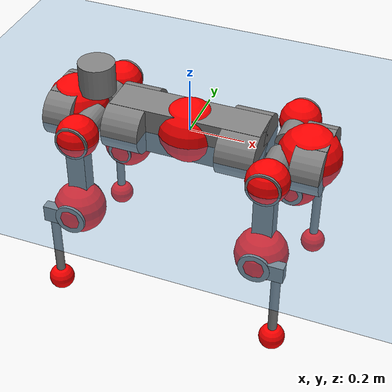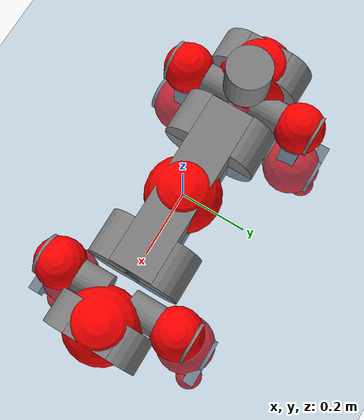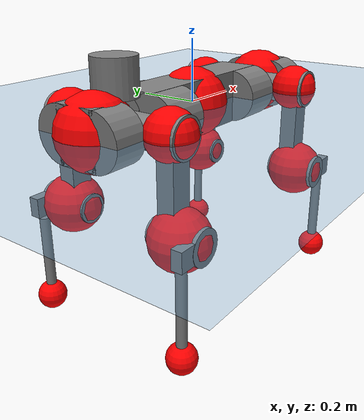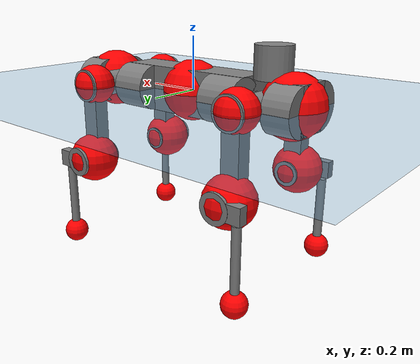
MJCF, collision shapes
<mujoco model="anymal_c">
  <compiler angle="radian" assetdir="assets" balanceinertia="true" inertiafromgeom="false"/>

  <option timestep="0.005" density="1.2" viscosity="2e-05"/>

  <size nkey="1"/>

  <visual>
    <quality shadowsize="8192"/>
    <map shadowclip="0.5"/>
  </visual>

  <default>
    <default class="/">
      <material specular="0" shininess="0.25"/>
      <geom contype="0" conaffinity="0" group="1" solref="-1000 -80"/>
      <site size="0.01 0.005 0.005" group="5"/>
      <general forcelimited="true" forcerange="-80 80" biastype="affine" gainprm="80" biasprm="0 -80 -2"/>
      <default class="anymal_c">
        <joint armature="0.01" damping="0.01" frictionloss="0.1"/>
        <default class="visual">
          <geom type="mesh" group="2"/>
          <default class="visual_zflip"/>
        </default>
        <default class="collision">
          <geom type="cylinder" group="3"/>
          <default class="foot">
            <geom size="0.03 0 0" type="sphere" condim="6" priority="1" friction="0.8 0.02 0.01" solimp="0.015 1 0.03"/>
          </default>
        </default>
      </default>
      <default class="reward_collision_sphere">
        <geom group="5" rgba="1 0 0 1"/>
      </default>
    </default>
  </default>

  <asset>
    <texture type="skybox" colorspace="auto" name="//unnamed_texture_0" builtin="gradient" rgb1="0.95 0.95 0.95" rgb2="0.95 0.95 0.95" width="100" height="600"/>
    <texture type="2d" colorspace="auto" name="texplane" builtin="checker" rgb1="0.345 0.575 0.748" rgb2="0.345 0.575 0.748" markrgb="1 1 1" width="512" height="512"/>
    <texture type="2d" colorspace="linear" name="base" file="base.png"/>
    <texture type="2d" colorspace="linear" name="top_shell" file="top_shell.png"/>
    <texture type="2d" colorspace="linear" name="bottom_shell" file="bottom_shell.png"/>
    <texture type="2d" colorspace="linear" name="remote" file="remote.png"/>
    <texture type="2d" colorspace="linear" name="hatch" file="hatch.png"/>
    <texture type="2d" colorspace="linear" name="handle" file="handle.png"/>
    <texture type="2d" colorspace="linear" name="face" file="face.png"/>
    <texture type="2d" colorspace="linear" name="battery" file="battery.png"/>
    <texture type="2d" colorspace="linear" name="lidar_cage" file="lidar_cage.png"/>
    <texture type="2d" colorspace="linear" name="depth_camera" file="depth_camera.png"/>
    <texture type="2d" colorspace="linear" name="wide_angle_camera" file="wide_angle_camera.png"/>
    <texture type="2d" colorspace="linear" name="lidar" file="lidar.png"/>
    <texture type="2d" colorspace="linear" name="drive" file="drive.png"/>
    <texture type="2d" colorspace="linear" name="hip_l" file="hip_l.png"/>
    <texture type="2d" colorspace="linear" name="shank_l" file="shank_l.png"/>
    <texture type="2d" colorspace="linear" name="foot" file="foot.png"/>
    <texture type="2d" colorspace="linear" name="thigh" file="thigh.png"/>
    <texture type="2d" colorspace="linear" name="shank_r" file="shank_r.png"/>
    <texture type="2d" colorspace="linear" name="hip_r" file="hip_r.png"/>
    <material name="MatPlane" class="/" texture="texplane" texuniform="true" texrepeat="2 2" specular="0.9" shininess="0.5"/>
    <material name="black_plastic" class="/" rgba="0.007 0.007 0.007 1"/>
    <material name="green" class="/" rgba="0.052 0.178 0.033 1"/>
    <material name="red" class="/" rgba="0.178 0.006 0.005 1"/>
    <material name="yellow" class="/" rgba="0.178 0.119 0.006 1"/>
    <material name="lwl" class="/" rgba="0.8 0.8 0.8 1"/>
    <material name="base" class="/" texture="base"/>
    <material name="top_shell" class="/" texture="top_shell"/>
    <material name="bottom_shell" class="/" texture="bottom_shell"/>
    <material name="hip_l" class="/" texture="hip_l"/>
    <material name="thigh" class="/" texture="thigh"/>
    <material name="shank_l" class="/" texture="shank_l"/>
    <material name="foot" class="/" texture="foot"/>
    <material name="hip_r" class="/" texture="hip_r"/>
    <material name="shank" class="/" texture="shank_r"/>
    <material name="hatch" class="/" texture="hatch"/>
    <material name="remote" class="/" texture="remote"/>
    <material name="handle" class="/" texture="handle"/>
    <material name="face" class="/" texture="face"/>
    <material name="depth_camera" class="/" texture="depth_camera"/>
    <material name="wide_angle_camera" class="/" texture="wide_angle_camera"/>
    <material name="battery" class="/" texture="battery"/>
    <material name="lidar_cage" class="/" texture="lidar_cage"/>
    <material name="lidar" class="/" texture="lidar"/>
    <material name="drive" class="/" texture="drive"/>
    <mesh name="base_0" class="/" file="base_0.obj"/>
    <mesh name="base_1" class="/" file="base_1.obj"/>
    <mesh name="base_2" class="/" file="base_2.obj"/>
    <mesh name="base_3" class="/" file="base_3.obj"/>
    <mesh name="base_4" class="/" file="base_4.obj"/>
    <mesh name="base_5" class="/" file="base_5.obj"/>
    <mesh name="top_shell" class="/" file="top_shell.obj"/>
    <mesh name="bottom_shell" class="/" file="bottom_shell.obj"/>
    <mesh name="remote" class="/" file="remote.obj"/>
    <mesh name="handle" class="/" file="handle.obj"/>
    <mesh name="face" class="/" file="face.obj"/>
    <mesh name="wide_angle_camera" class="/" file="wide_angle_camera.obj"/>
    <mesh name="depth_camera" class="/" file="depth_camera.obj"/>
    <mesh name="battery" class="/" file="battery.obj"/>
    <mesh name="lidar_cage" class="/" file="lidar_cage.obj"/>
    <mesh name="lidar" class="/" file="lidar.obj"/>
    <mesh name="drive" class="/" file="drive.obj"/>
    <mesh name="hip_l" class="/" file="hip_l.obj"/>
    <mesh name="thigh" class="/" file="thigh.obj"/>
    <mesh name="shank_l" class="/" file="shank_l.obj"/>
    <mesh name="foot" class="/" file="foot.obj"/>
    <mesh name="hip_r" class="/" file="hip_r.obj"/>
    <mesh name="hatch" class="/" file="hatch.obj"/>
    <mesh name="shank_r" class="/" file="shank_r.obj"/>
  </asset>

  <worldbody>
    <geom name="floor" class="/" size="100 100 0.125" type="plane" group="0" material="MatPlane"/>
    <light name="toplight_shadow" class="/" pos="0 0 5" dir="0.0990148 0.0990148 -0.990148" type="directional" ambient="0.04 0.04 0.04" diffuse="0.55 0.55 0.55" specular="0.12 0.12 0.12"/>
    <light name="toplight_fill" class="/" pos="0 0 5" dir="0.0990148 0.0990148 -0.990148" type="directional" castshadow="false" ambient="0.04 0.04 0.04" diffuse="0.3 0.3 0.3" specular="0.08 0.08 0.08"/>
    <body name="trunk" childclass="anymal_c" pos="-0.00080985 0.000145348 0.000491434" quat="1 9.47972e-05 -8.36384e-05 6.17043e-05">
      <inertial pos="0.00253171 -0.000445289 0.0511203" quat="0.502875 0.501379 0.502343 0.493342" mass="16.5633" diaginertia="0.54704 0.290656 0.269706"/>
      <joint name="//unnamed_joint_0" type="free" armature="0" damping="0" frictionloss="0"/>
      <geom name="//unnamed_geom_1" class="visual" material="green" mesh="base_0"/>
      <geom name="//unnamed_geom_2" class="visual" material="yellow" mesh="base_1"/>
      <geom name="//unnamed_geom_3" class="visual" material="red" mesh="base_2"/>
      <geom name="//unnamed_geom_4" class="visual" material="black_plastic" mesh="base_3"/>
      <geom name="//unnamed_geom_5" class="visual" material="lwl" mesh="base_4"/>
      <geom name="//unnamed_geom_6" class="visual" material="base" mesh="base_5"/>
      <geom name="trunk_1" class="collision" size="0.276262 0.0666839 0.0857365" type="box"/>
      <geom name="trunk_2" class="collision" size="0.0857365 0.0690655" pos="0.209591 0.0599402 0" quat="0.707107 0 0.707107 0"/>
      <geom name="trunk_3" class="collision" size="0.0857365 0.0690655" pos="-0.209591 0.0599402 0" quat="0.707107 0 0.707107 0"/>
      <geom name="trunk_4" class="collision" size="0.0857365 0.0690655" pos="0.209591 -0.0599402 0" quat="0.707107 0 0.707107 0"/>
      <geom name="trunk_5" class="collision" size="0.0857365 0.0690655" pos="-0.209591 -0.0599402 0" quat="0.707107 0 0.707107 0"/>
      <geom name="//unnamed_geom_12" class="visual" material="top_shell" mesh="top_shell"/>
      <geom name="//unnamed_geom_13" class="visual" material="bottom_shell" mesh="bottom_shell"/>
      <geom name="//unnamed_geom_14" class="visual" material="remote" mesh="remote"/>
      <geom name="//unnamed_geom_15" class="visual" material="handle" mesh="handle"/>
      <geom name="//unnamed_geom_16" class="visual" pos="0.399427 0 0" quat="1 0 0 0" material="face" mesh="face"/>
      <geom name="trunk_6" class="collision" size="0.0523945 0.0666839 0.0857365" pos="0.452427 0 0" type="box"/>
      <geom name="//unnamed_geom_18" class="collision" size="0.0857365 0.0523945" pos="0.452427 0.0599402 0" quat="0.707107 0 0.707107 0"/>
      <geom name="//unnamed_geom_19" class="collision" size="0.0857365 0.0523945" pos="0.452427 -0.0599402 0" quat="0.707107 0 0.707107 0"/>
      <geom name="//unnamed_geom_20" class="visual" pos="0.444866 0 -0.0308732" quat="0.965926 0 0.258819 0" material="depth_camera" mesh="depth_camera"/>
      <geom name="//unnamed_geom_21" class="visual" pos="0.494345 0 0.0155382" material="wide_angle_camera" mesh="wide_angle_camera"/>
      <geom name="//unnamed_geom_22" class="visual_zflip" pos="-0.399427 0 0" quat="0 0 0 1" material="face" mesh="face"/>
      <geom name="trunk_7" class="collision" size="0.0523945 0.0666839 0.0857365" pos="-0.452427 0 0" quat="0 0 0 1" type="box"/>
      <geom name="//unnamed_geom_24" class="collision" size="0.0857365 0.0523945" pos="-0.452427 -0.0599402 0" quat="0 -0.707107 0 0.707107"/>
      <geom name="//unnamed_geom_25" class="collision" size="0.0857365 0.0523945" pos="-0.452427 0.0599402 0" quat="0 -0.707107 0 0.707107"/>
      <geom name="//unnamed_geom_26" class="visual" pos="-0.444866 0 -0.0308732" quat="0 -0.258819 0 0.965926" material="depth_camera" mesh="depth_camera"/>
      <geom name="//unnamed_geom_27" class="visual_zflip" pos="-0.494345 0 0.0155382" quat="0 0 0 1" material="wide_angle_camera" mesh="wide_angle_camera"/>
      <geom name="//unnamed_geom_28" class="visual" material="battery" mesh="battery"/>
      <geom name="//unnamed_geom_29" class="visual" pos="0 0.0640662 0.0295878" quat="0.683013 -0.183013 0.183013 0.683013" material="depth_camera" mesh="depth_camera"/>
      <geom name="//unnamed_geom_30" class="visual" pos="0 -0.0640662 0.0295878" quat="0.683013 0.183013 0.183013 -0.683013" material="depth_camera" mesh="depth_camera"/>
      <geom name="//unnamed_geom_31" class="visual" pos="-0.350764 0 0.0762899" quat="1 0 0 0" material="lidar_cage" mesh="lidar_cage"/>
      <geom name="trunk_8" class="collision" size="0.0666839 0.0571576" pos="-0.350764 0 0.138567"/>
      <geom name="//unnamed_geom_33" class="visual" pos="-0.350763 -4.21742e-05 0.147598" quat="0.707107 0 0 -0.707107" material="lidar" mesh="lidar"/>
      <geom name="//unnamed_geom_34" class="visual" pos="0.288994 0.0891185 -3.13383e-09" quat="0.258819 0.965926 0 0" material="drive" mesh="drive"/>
      <geom name="//unnamed_geom_35" class="visual" pos="0.288994 -0.0891185 3.13383e-09" quat="0.258819 -0.965926 0 0" material="drive" mesh="drive"/>
      <geom name="//unnamed_geom_36" class="visual" pos="-0.288994 0.0891185 3.13383e-09" quat="0 0 0.965926 -0.258819" material="drive" mesh="drive"/>
      <geom name="//unnamed_geom_37" class="visual" pos="-0.288994 -0.0891185 -3.13383e-09" quat="0 0 -0.965926 -0.258819" material="drive" mesh="drive"/>
      <geom name="//unnamed_geom_38" class="visual" pos="0.111782 0 0.075771" quat="1 0 0 0" material="hatch" mesh="hatch"/>
      <geom name="//unnamed_geom_39" class="reward_collision_sphere" size="0.114315"/>
      <geom name="//unnamed_geom_40" class="reward_collision_sphere" size="0.114315" pos="0.433636 0 0"/>
      <geom name="//unnamed_geom_41" class="reward_collision_sphere" size="0.114315" pos="-0.433636 0 0"/>
      <site name="imu" pos="0.2387 -0.00529713 0.0531532" size="0.00952627"/>
      <camera name="track" pos="0 -1.71258 0" quat="0.707107 0.707107 0 0" mode="trackcom"/>
      <camera name="ego_camera" pos="0.433636 0 -0.0415183" quat="-0.5 -0.5 0.5 0.5"/>
      <body name="LF_HIP" pos="0.289276 0.089331 0.000224239" quat="0.259295 0.965797 -0.0011133 -0.000421268">
        <inertial pos="0.0551191 -0.0122436 -0.00759058" quat="-0.127821 0.708088 -0.13946 0.680311" mass="2.47186" diaginertia="0.00500044 0.00232853 0.00405047"/>
        <joint name="LF_HAA" pos="0 0 0" axis="0.999996 -0.00280606 -0.000504832" range="-0.677075 0.486886" armature="0.0100755" damping="0.0127061" frictionloss="0.0950955"/>
        <geom name="//unnamed_geom_42" class="visual" pos="0 -0.000184349 3.02792e-05" quat="0.258819 -0.965926 0 0" material="hip_l" mesh="hip_l"/>
        <geom name="//unnamed_geom_43" class="visual" pos="0.0577218 -0.0685934 -0.0409461" quat="0.183013 -0.683013 0.683013 0.183013" material="drive" mesh="drive"/>
        <geom name="//unnamed_geom_44" class="collision" size="0.0476314 0.0666839" pos="0.0577218 -0.010241 -0.0071671" quat="-0.353553 -0.612372 0.612372 -0.353553"/>
        <body name="LF_THIGH" pos="0.0579619 -0.0627395 -0.0421539" quat="0.18292 -0.683037 0.682957 0.183222">
          <inertial pos="0.0299012 -0.00205781 -0.257453" quat="0.992694 -0.00349138 -0.0849399 0.0856204" mass="2.67255" diaginertia="0.0251909 0.013862 0.00503977"/>
          <joint name="LF_HFE" pos="0 0 0" axis="1 0.000823225 -0.000176266" range="-3.14482 3.18671" armature="0.0097091" damping="0" frictionloss="0.0952493"/>
          <geom name="//unnamed_geom_45" class="visual" pos="0.0021358 3.36553e-06 0" quat="0.707107 0 0 -0.707107" material="thigh" mesh="thigh"/>
          <geom name="//unnamed_geom_46" class="collision" size="0.0619208 0.0381051" pos="0.0385454 0 0" quat="0.5 0.5 -0.5 -0.5"/>
          <geom name="//unnamed_geom_47" class="collision" size="0.0357235 0.0285788 0.13462" pos="0.0289091 0 -0.146678" quat="0.707107 0 0 -0.707107" type="box"/>
          <geom name="//unnamed_geom_48" class="visual" pos="0.0966527 0 -0.295818" quat="1 0 0 0" material="drive" mesh="drive"/>
          <geom name="//unnamed_geom_49" class="collision" size="0.0476314 0.0666839" pos="0.0291982 0 -0.295818" quat="0.707107 0 0.707107 0"/>
          <geom name="//unnamed_geom_50" class="reward_collision_sphere" size="0.0762102" pos="0.0240909 0 0"/>
          <body name="LF_SHANK" pos="0.0990854 0.00186456 -0.295" quat="1 0.000102266 -1.36333e-05 5.47923e-05">
            <inertial pos="0.00613274 -0.0521953 -0.0831735" quat="0.992839 -0.116585 -0.000500495 -0.0260614" mass="0.52046" diaginertia="0.00848656 0.00427449 0.00134736"/>
            <joint name="LF_KFE" pos="0 0 0" axis="0.999997 0.00109611 -0.002173" range="-3.1312 3.1017" armature="0.00945871" damping="0.00925482" frictionloss="0.0936872"/>
            <geom name="//unnamed_geom_51" class="visual" pos="0.000696439 0.00371345 0" quat="0.707107 0 0 -0.707107" material="shank_l" mesh="shank_l"/>
            <geom name="LF_kfe_act" class="collision" size="0.0571576 0.0190525" pos="0.0192727 0 0" quat="0.5 0.5 -0.5 -0.5"/>
            <geom name="//unnamed_geom_53" class="collision" size="0.0547751 0.0321512 0.0180999" pos="0.0192727 -0.0492357 0" quat="0.5 0.5 -0.5 -0.5" type="box"/>
            <geom name="//unnamed_geom_54" class="visual" pos="0.0125753 -0.0741138 -0.350799" quat="0.382683 0 0 -0.92388" material="foot" mesh="foot"/>
            <geom name="LF_calf" class="collision" size="0.016671 0.134561" pos="0.0125754 -0.0753105 -0.175399" quat="0.707107 0 0 -0.707107"/>
            <geom name="LF_foot" class="foot" size="0.0273278" pos="0.0125754 -0.0753105 -0.327445" quat="0.707107 0 0 -0.707107"/>
            <geom name="//unnamed_geom_57" class="reward_collision_sphere" size="0.0952627" pos="-0.0481818 0 0"/>
            <geom name="//unnamed_geom_58" class="reward_collision_sphere" size="0.0476314" pos="0.0125754 -0.0753105 -0.327445"/>
            <site name="LF_foot" class="foot" pos="0.0125754 -0.0753105 -0.327445" quat="0.707107 0 0 -0.707107" size="0.00952627"/>
          </body>
        </body>
      </body>
      <body name="RF_HIP" pos="0.289193 -0.0901535 0.00237015" quat="0.258923 -0.965898 1.64166e-05 6.80173e-05">
        <inertial pos="0.0555347 0.0130979 -0.00894336" quat="0.137177 0.679181 0.138293 0.707652" mass="2.46503" diaginertia="0.00503106 0.00230296 0.00406265"/>
        <joint name="RF_HAA" pos="0 0 0" axis="1 0.000598527 -0.00056279" range="-0.474555 0.729647" armature="0.0095947" damping="0.0101828" frictionloss="0.0903335"/>
        <geom name="//unnamed_geom_59" class="visual" pos="0 0.000184348 3.02791e-05" quat="0.258819 0.965926 0 0" material="hip_r" mesh="hip_r"/>
        <geom name="//unnamed_geom_60" class="visual" pos="0.0577218 0.0685934 -0.0409461" quat="0.183013 0.683013 0.683013 -0.183013" material="drive" mesh="drive"/>
        <geom name="//unnamed_geom_61" class="collision" size="0.0476314 0.0666839" pos="0.0577218 0.010241 -0.0071671" quat="-0.353553 0.612372 0.612372 0.353553"/>
        <body name="RF_THIGH" pos="0.0574995 0.0621837 -0.0451355" quat="0.183045 0.683011 0.682923 -0.18332">
          <inertial pos="0.0296622 -5.44906e-05 -0.257059" quat="0.993645 -0.00962622 -0.0815087 0.0770266" mass="2.69441" diaginertia="0.0259612 0.0141329 0.00517637"/>
          <joint name="RF_HFE" pos="0 0 0" axis="0.999999 0.000755805 -0.000740606" stiffness="0.00487897" range="-3.18729 3.1669" armature="0.00892314" damping="0.0098455" frictionloss="0.0923605"/>
          <geom name="//unnamed_geom_62" class="visual" pos="0.0021358 3.36553e-06 0" quat="0.707107 0 0 -0.707107" material="thigh" mesh="thigh"/>
          <geom name="//unnamed_geom_63" class="collision" size="0.0619208 0.0381051" pos="0.0385454 0 0" quat="0.5 0.5 0.5 0.5"/>
          <geom name="//unnamed_geom_64" class="collision" size="0.0357235 0.0285788 0.13462" pos="0.0289091 0 -0.146678" quat="0.707107 0 0 0.707107" type="box"/>
          <geom name="//unnamed_geom_65" class="visual" pos="0.0966527 0 -0.295818" quat="1 0 0 0" material="drive" mesh="drive"/>
          <geom name="//unnamed_geom_66" class="collision" size="0.0476314 0.0666839" pos="0.0291982 0 -0.295818" quat="0.707107 0 0.707107 0"/>
          <geom name="//unnamed_geom_67" class="reward_collision_sphere" size="0.0762102" pos="0.0240909 0 0"/>
          <body name="RF_SHANK" pos="0.0965078 0.000801956 -0.296172" quat="1 -7.34882e-06 -2.95591e-06 -4.7482e-05">
            <inertial pos="0.00490667 0.0526238 -0.0810376" quat="0.992769 0.117326 -0.00092139 0.0253573" mass="0.485208" diaginertia="0.00808711 0.00424647 0.00127265"/>
            <joint name="RF_KFE" pos="0 0 0" axis="0.999998 0.00011612 -0.00201338" range="-3.12205 3.14341" armature="0.0100075" damping="0.00872927" frictionloss="0.095041"/>
            <geom name="//unnamed_geom_68" class="visual" pos="0.000696435 -0.00371344 0" quat="0.707107 0 0 0.707107" material="shank" mesh="shank_r"/>
            <geom name="RF_kfe_act" class="collision" size="0.0571576 0.0190525" pos="0.0192727 0 0" quat="0.5 0.5 0.5 0.5"/>
            <geom name="//unnamed_geom_70" class="collision" size="0.0547751 0.0321512 0.0180999" pos="0.0192727 0.0492357 0" quat="0.5 0.5 0.5 0.5" type="box"/>
            <geom name="//unnamed_geom_71" class="visual" pos="0.0125756 0.0741138 -0.350799" quat="0.382683 0 0 0.92388" material="foot" mesh="foot"/>
            <geom name="RF_calf" class="collision" size="0.016671 0.134561" pos="0.0125754 0.0753105 -0.175399" quat="0.707107 0 0 0.707107"/>
            <geom name="RF_foot" class="foot" size="0.0280609" pos="0.0125754 0.0753105 -0.327445" quat="0.707107 0 0 0.707107"/>
            <geom name="//unnamed_geom_74" class="reward_collision_sphere" size="0.0952627" pos="-0.0481818 0 0"/>
            <geom name="//unnamed_geom_75" class="reward_collision_sphere" size="0.0476314" pos="0.0125754 0.0753105 -0.327445"/>
            <site name="RF_foot" class="foot" pos="0.0125754 0.0753105 -0.327445" quat="0.707107 0 0 0.707107" size="0.00952627"/>
          </body>
        </body>
      </body>
      <body name="LH_HIP" pos="-0.288701 0.0899926 -0.00137639" quat="-2.15933e-05 5.17313e-05 0.966017 -0.258478">
        <inertial pos="0.0544031 0.0123291 -0.0107465" quat="0.136332 0.678822 0.128437 0.710013" mass="2.45531" diaginertia="0.00495569 0.00224035 0.00397396"/>
        <joint name="LH_HAA" pos="0 0 0" axis="0.999999 -0.00123221 0.000412284" range="-0.445166 0.76403" armature="0.00950064" damping="0.00796965" frictionloss="0.104969"/>
        <geom name="//unnamed_geom_76" class="visual" pos="0 0.000184348 3.02791e-05" quat="-0.258819 -0.965926 0 0" material="hip_r" mesh="hip_r"/>
        <geom name="//unnamed_geom_77" class="visual" pos="0.0577218 0.0685934 -0.0409461" quat="0.183013 0.683013 0.683013 -0.183013" material="drive" mesh="drive"/>
        <geom name="//unnamed_geom_78" class="collision" size="0.0476314 0.0666839" pos="0.0577218 0.010241 -0.0071671" quat="-0.353553 0.612372 0.612372 0.353553"/>
        <body name="LH_THIGH" pos="0.057281 0.0626826 -0.0443036" quat="0.183179 0.682951 0.683002 -0.183117">
          <inertial pos="0.0278513 4.36874e-05 -0.257281" quat="0.991806 -0.00361208 -0.0902714 0.0903294" mass="2.63339" diaginertia="0.0241548 0.0136022 0.004854"/>
          <joint name="LH_HFE" pos="0 0 0" axis="0.999937 0.00627627 0.0092731" range="-3.18286 3.1503" armature="0.00906742" damping="0.00298524" frictionloss="0.0967074"/>
          <geom name="//unnamed_geom_79" class="visual" pos="0.0021358 3.36553e-06 0" quat="0.707107 0 0 -0.707107" material="thigh" mesh="thigh"/>
          <geom name="//unnamed_geom_80" class="collision" size="0.0619208 0.0381051" pos="0.0385454 0 0" quat="0.5 0.5 -0.5 -0.5"/>
          <geom name="//unnamed_geom_81" class="collision" size="0.0357235 0.0285788 0.13462" pos="0.0289091 0 -0.146678" quat="0.707107 0 0 -0.707107" type="box"/>
          <geom name="//unnamed_geom_82" class="visual" pos="0.0966527 0 -0.295818" quat="1 0 0 0" material="drive" mesh="drive"/>
          <geom name="//unnamed_geom_83" class="collision" size="0.0476314 0.0666839" pos="0.0291982 0 -0.295818" quat="0.707107 0 0.707107 0"/>
          <geom name="//unnamed_geom_84" class="reward_collision_sphere" size="0.0762102" pos="0.0240909 0 0"/>
          <body name="LH_SHANK" pos="0.0967272 -0.0015036 -0.297225" quat="1 -2.58177e-06 -0.000454529 -0.000193567">
            <inertial pos="0.00511391 0.0522251 -0.0832572" quat="0.99284 0.117961 -0.000450042 0.018787" mass="0.502546" diaginertia="0.00843008 0.00420669 0.00136716"/>
            <joint name="LH_KFE" pos="0 0 0" axis="0.999997 -0.00247177 -0.000783947" range="-3.1645 3.14" armature="0.00977424" damping="0.00846848" frictionloss="0.095079"/>
            <geom name="//unnamed_geom_85" class="visual" pos="0.000696435 -0.00371344 0" quat="-0.707107 0 0 -0.707107" material="shank" mesh="shank_r"/>
            <geom name="LH_kfe_act" class="collision" size="0.0571576 0.0190525" pos="0.0192727 0 0" quat="0.5 0.5 -0.5 -0.5"/>
            <geom name="//unnamed_geom_87" class="collision" size="0.0547751 0.0321512 0.0180999" pos="0.0192727 0.0492357 0" quat="0.5 0.5 -0.5 -0.5" type="box"/>
            <geom name="//unnamed_geom_88" class="visual" pos="0.0125756 0.0741138 -0.350799" quat="-0.382683 0 0 -0.92388" material="foot" mesh="foot"/>
            <geom name="LH_calf" class="collision" size="0.016671 0.134561" pos="0.0125754 0.0753105 -0.175399" quat="0.707107 0 0 -0.707107"/>
            <geom name="LH_foot" class="foot" size="0.0315053" pos="0.0125754 0.0753105 -0.327445" quat="0.707107 0 0 -0.707107"/>
            <geom name="//unnamed_geom_91" class="reward_collision_sphere" size="0.0952627" pos="-0.0481818 0 0"/>
            <geom name="//unnamed_geom_92" class="reward_collision_sphere" size="0.0476314" pos="0.0125754 0.0753105 -0.327445"/>
            <site name="LH_foot" class="foot" pos="0.0125754 0.0753105 -0.327445" quat="0.707107 0 0 -0.707107" size="0.00952627"/>
          </body>
        </body>
      </body>
      <body name="RH_HIP" pos="-0.288889 -0.0876601 0.000327969" quat="-0.000520502 4.57152e-06 -0.965864 -0.25905">
        <inertial pos="0.0543954 -0.0112674 -0.0096851" quat="-0.127991 0.710082 -0.135096 0.679081" mass="2.30762" diaginertia="0.00472756 0.00220583 0.00383815"/>
        <joint name="RH_HAA" pos="0 0 0" axis="0.999985 -0.00207095 0.00513292" range="-0.742901 0.464266" armature="0.00962516" damping="0.000996947" frictionloss="0.0904082"/>
        <geom name="//unnamed_geom_93" class="visual" pos="0 -0.000184349 3.02792e-05" quat="-0.258819 0.965926 0 0" material="hip_l" mesh="hip_l"/>
        <geom name="//unnamed_geom_94" class="visual" pos="0.0577218 -0.0685934 -0.0409461" quat="-0.183013 0.683013 -0.683013 -0.183013" material="drive" mesh="drive"/>
        <geom name="//unnamed_geom_95" class="collision" size="0.0476314 0.0666839" pos="0.0577218 -0.010241 -0.0071671" quat="0.353553 0.612372 -0.612372 0.353553"/>
        <body name="RH_THIGH" pos="0.0570514 -0.0617948 -0.0414577" quat="-0.183076 0.683107 -0.68291 -0.182982">
          <inertial pos="0.0298771 0.000717568 -0.254953" quat="0.993177 -0.00509498 -0.0805999 0.0841307" mass="2.55479" diaginertia="0.0244276 0.0134104 0.00503446"/>
          <joint name="RH_HFE" pos="0 0 0" axis="0.999982 0.00572234 0.00155284" stiffness="0.000973928" range="-3.18497 3.18488" armature="0.00952063" damping="0.0068197" frictionloss="0.0878158"/>
          <geom name="//unnamed_geom_96" class="visual" pos="0.0021358 3.36553e-06 0" quat="0.707107 0 0 -0.707107" material="thigh" mesh="thigh"/>
          <geom name="//unnamed_geom_97" class="collision" size="0.0619208 0.0381051" pos="0.0385454 0 0" quat="0.5 0.5 0.5 0.5"/>
          <geom name="//unnamed_geom_98" class="collision" size="0.0357235 0.0285788 0.13462" pos="0.0289091 0 -0.146678" quat="0.707107 0 0 0.707107" type="box"/>
          <geom name="//unnamed_geom_99" class="visual" pos="0.0966527 0 -0.295818" quat="1 0 0 0" material="drive" mesh="drive"/>
          <geom name="//unnamed_geom_100" class="collision" size="0.0476314 0.0666839" pos="0.0291982 0 -0.295818" quat="0.707107 0 0.707107 0"/>
          <geom name="//unnamed_geom_101" class="reward_collision_sphere" size="0.0762102" pos="0.0240909 0 0"/>
          <body name="RH_SHANK" pos="0.0983431 -0.000245057 -0.295895" quat="1 -3.86796e-05 -3.14694e-05 -0.000240646">
            <inertial pos="0.00432496 -0.0523007 -0.0839385" quat="0.992941 -0.115859 -0.000807393 -0.0253617" mass="0.498587" diaginertia="0.00844675 0.0041967 0.00134806"/>
            <joint name="RH_KFE" pos="0 0 0" axis="0.999967 -0.00692557 -0.00418831" range="-3.12884 3.13414" armature="0.0098203" damping="0" frictionloss="0.0966743"/>
            <geom name="//unnamed_geom_102" class="visual" pos="0.000696439 0.00371345 0" quat="0.707107 0 0 -0.707107" material="shank_l" mesh="shank_l"/>
            <geom name="RH_kfe_act" class="collision" size="0.0571576 0.0190525" pos="0.0192727 0 0" quat="0.5 0.5 0.5 0.5"/>
            <geom name="//unnamed_geom_104" class="collision" size="0.0547751 0.0321512 0.0180999" pos="0.0192727 -0.0492357 0" quat="0.5 0.5 0.5 0.5" type="box"/>
            <geom name="//unnamed_geom_105" class="visual" pos="0.0125753 -0.0741138 -0.350799" quat="0.382683 0 0 -0.92388" material="foot" mesh="foot"/>
            <geom name="RH_calf" class="collision" size="0.016671 0.134561" pos="0.0125754 -0.0753105 -0.175399" quat="0.707107 0 0 0.707107"/>
            <geom name="RH_foot" class="foot" size="0.0297016" pos="0.0125754 -0.0753105 -0.327445" quat="0.707107 0 0 0.707107"/>
            <geom name="//unnamed_geom_108" class="reward_collision_sphere" size="0.0952627" pos="-0.0481818 0 0"/>
            <geom name="//unnamed_geom_109" class="reward_collision_sphere" size="0.0476314" pos="0.0125754 -0.0753105 -0.327445"/>
            <site name="RH_foot" class="foot" pos="0.0125754 -0.0753105 -0.327445" quat="0.707107 0 0 0.707107" size="0.00952627"/>
          </body>
        </body>
      </body>
    </body>
  </worldbody>

  <contact>
    <pair class="/" geom1="floor" geom2="LF_foot" name="//unnamed_contact_0"/>
    <pair class="/" geom1="floor" geom2="RF_foot" name="//unnamed_contact_1"/>
    <pair class="/" geom1="floor" geom2="LH_foot" name="//unnamed_contact_2"/>
    <pair class="/" geom1="floor" geom2="RH_foot" name="//unnamed_contact_3"/>
  </contact>

  <actuator>
    <general name="LF_HAA" class="/" joint="LF_HAA" forcerange="-74.1955 74.1955" gainprm="77.1651" biasprm="0 -77.1651 -2.00465"/>
    <general name="LF_HFE" class="/" joint="LF_HFE" forcerange="-81.4914 81.4914" gainprm="77.1651" biasprm="0 -77.1651 -2.00465"/>
    <general name="LF_KFE" class="/" joint="LF_KFE" forcerange="-70.9996 70.9996" gainprm="77.1651" biasprm="0 -77.1651 -2.00465"/>
    <general name="RF_HAA" class="/" joint="RF_HAA" forcerange="-78.026 78.026" gainprm="77.1651" biasprm="0 -77.1651 -2.00465"/>
    <general name="RF_HFE" class="/" joint="RF_HFE" forcerange="-78.8853 78.8853" gainprm="77.1651" biasprm="0 -77.1651 -2.00465"/>
    <general name="RF_KFE" class="/" joint="RF_KFE" forcerange="-83.4489 83.4489" gainprm="77.1651" biasprm="0 -77.1651 -2.00465"/>
    <general name="LH_HAA" class="/" joint="LH_HAA" forcerange="-82.9434 82.9434" gainprm="77.1651" biasprm="0 -77.1651 -2.00465"/>
    <general name="LH_HFE" class="/" joint="LH_HFE" forcerange="-75.7186 75.7186" gainprm="77.1651" biasprm="0 -77.1651 -2.00465"/>
    <general name="LH_KFE" class="/" joint="LH_KFE" forcerange="-78.1621 78.1621" gainprm="77.1651" biasprm="0 -77.1651 -2.00465"/>
    <general name="RH_HAA" class="/" joint="RH_HAA" forcerange="-75.9541 75.9541" gainprm="77.1651" biasprm="0 -77.1651 -2.00465"/>
    <general name="RH_HFE" class="/" joint="RH_HFE" forcerange="-69.6005 69.6005" gainprm="77.1651" biasprm="0 -77.1651 -2.00465"/>
    <general name="RH_KFE" class="/" joint="RH_KFE" forcerange="-72.3144 72.3144" gainprm="77.1651" biasprm="0 -77.1651 -2.00465"/>
  </actuator>

  <sensor>
    <gyro site="imu" name="imu_angular_velocity"/>
    <velocimeter site="imu" name="imu_linear_velocity"/>
    <framelinvel objtype="site" objname="LF_foot" name="LF_foot_global_linear_velocity"/>
    <framelinvel objtype="site" objname="RF_foot" name="RF_foot_global_linear_velocity"/>
    <framelinvel objtype="site" objname="LH_foot" name="LH_foot_global_linear_velocity"/>
    <framelinvel objtype="site" objname="RH_foot" name="RH_foot_global_linear_velocity"/>
  </sensor>

  <keyframe>
    <key name="home" qpos="0 0 0.55 1 0 0 0 0 0.4 -0.8 0 -0.4 0.8 0 -0.4 0.8 0 0.4 -0.8"/>
  </keyframe>
</mujoco>
